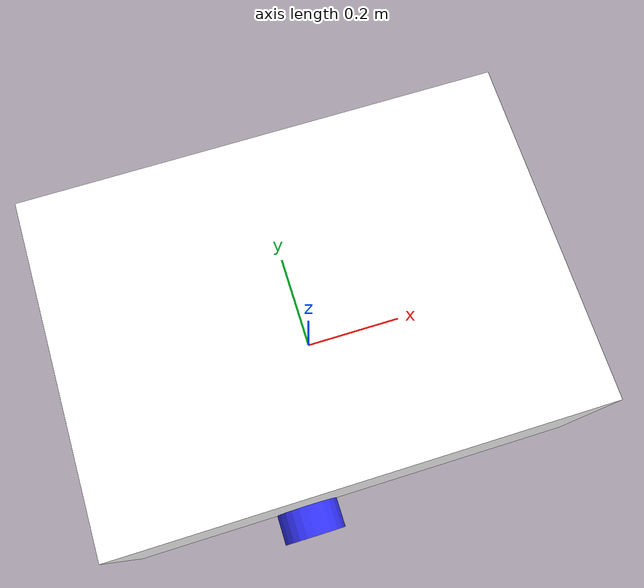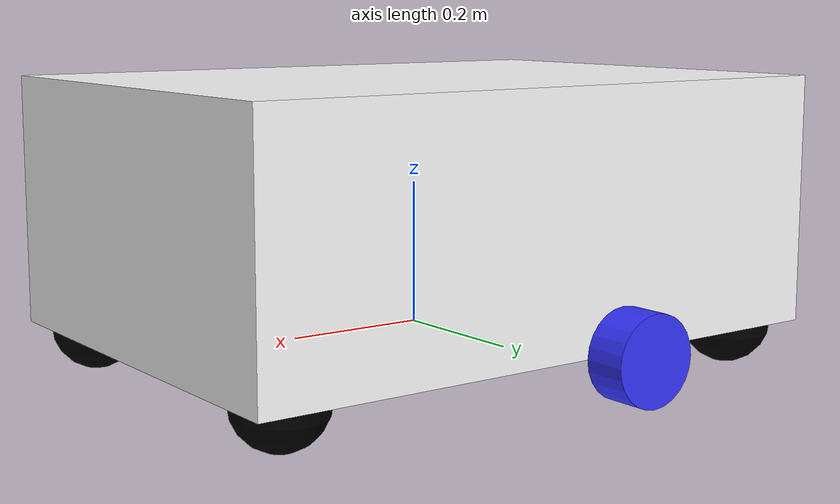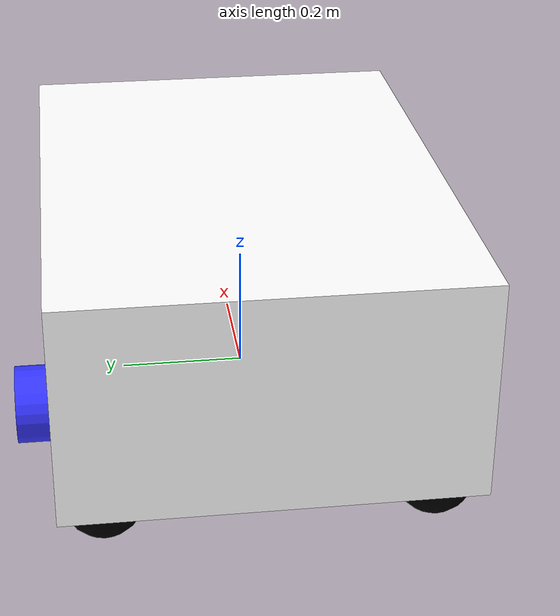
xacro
<?xml version="1.0"?>
<robot xmlns:xacro="http://www.ros.org/wiki/xacro" >

    <xacro:include filename="inertial_macros.xacro"/>

    <material name="white">
        <color rgba="1 1 1 1" />
    </material>

    <material name="orange">
        <color rgba="1 0.3 0.1 1"/>
    </material>

    <material name="blue">
        <color rgba="0.2 0.2 1 1"/>
    </material>

    <material name="black">
        <color rgba="0 0 0 1"/>
    </material>
    <material name="red">
        <color rgba="1 0 0 1"/>
    </material>

    <!-- BASE LINK -->

    <link name="base_link">

    </link>
    <!-- BASE_FOOTPRINT LINK -->

    <joint name="base_footprint_joint" type="fixed">
        <parent link="base_link"/>
        <child link="base_footprint"/>
        <origin xyz="0 0 0" rpy="0 0 0"/>
    </joint>

    <link name="base_footprint">
    </link>

    <!-- CHASSIS LINK -->
 <joint name="chassis_joint" type="fixed">
        <parent link="base_link"/>
        <child link="chassis"/>
        <origin xyz="-0.445 0 0"/>
    </joint>

    <link name="chassis">
        <visual>
            <origin xyz="0.445 0 0.175"/>
            <geometry>
                <box size="0.89 0.64 0.35"/>
            </geometry>
            <material name="white"/>
        </visual>
        <collision>
            <origin xyz="0.445 0 0.175"/>
            <geometry>
                <box size="0.89 0.64 0.35"/>
            </geometry>
        </collision>
        <xacro:inertial_box mass="8" x="0.89" y="0.64" z="0.35">
            <origin xyz="0.445 0 0.175" rpy="0 0 0"/>
        </xacro:inertial_box>

    </link>
    <gazebo reference="chassis">
    <material>Gazebo/White</material>
</gazebo>

<!-- LEFT WHEEL -->

<joint name="left_wheel_joint" type="continuous">
    <parent link="base_link"/>
    <child link="left_wheel"/>
    <origin xyz="-0.103 0.35 0" rpy="-${pi/2} 0 0"/>
    <axis xyz="0 0 1"/>
</joint>

<link name="left_wheel">
    <visual>
        <geometry>
            <cylinder length="0.06" radius="0.0626" />
        </geometry>
        <material name="blue"/>
    </visual>
    <collision>
        <geometry>
            <cylinder length="0.06" radius="0.0626" />
        </geometry>
    </collision>
    <xacro:inertial_cylinder mass="0.1" length="0.06" radius="0.0626">
            <origin xyz="0 0 0" rpy="0 0 0"/>
        </xacro:inertial_cylinder>
</link>
<gazebo reference="left_wheel">
    <material>Gazebo/Blue</material>
</gazebo>

<!-- RIGHT WHEEL LINK -->

<joint name="right_wheel_joint" type="continuous">
    <parent link="base_link"/>
    <child link="right_wheel"/>
    <origin xyz="-0.103 -0.35 0" rpy="${pi/2} 0 0"/>
    <axis xyz="0 0 -1"/>
</joint>

<link name="right_wheel">
    <visual>
        <geometry>
            <cylinder length="0.06" radius="0.0626" />
        </geometry>
        <material name="blue"/>
    </visual>
    <collision>
        <geometry>
            <cylinder length="0.06" radius="0.0626" />
        </geometry>
    </collision>
    <xacro:inertial_cylinder mass="0.1" length="0.06" radius="0.0626">
            <origin xyz="0 0 0" rpy="0 0 0"/>
        </xacro:inertial_cylinder>

</link>
<gazebo reference="right_wheel">
    <material>Gazebo/Blue</material>
</gazebo>

<!-- FRONT CASTER WHEEL LINK -->

    <joint name="front_caster_wheel_joint" type="fixed">
        <parent link="chassis"/>
        <child link="front_caster_wheel"/>
        <origin xyz="0.82 -0.25 0"/>

    </joint>

    <link name="front_caster_wheel">
        <visual>
            <geometry>
                <sphere radius="0.0625"/>
            </geometry>
            <material name="black"/>
        </visual>
        <collision>
            <geometry>
                <sphere radius="0.0625"/>
            </geometry>
            <material name="black"/>
        </collision>
        <xacro:inertial_sphere mass="0.1" radius="0.0625">
            <origin xyz="0 0 0" rpy="0 0 0"/>
        </xacro:inertial_sphere>
    </link>
    <gazebo reference="front_caster_wheel">
    <material>Gazebo/Black</material>
</gazebo>

<!-- FRONT CASTER LEFT WHEEL LINK-->
    <joint name="front_caster_left_wheel_joint" type="fixed">
        <parent link="chassis"/>
        <child link="front_caster_left_wheel"/>
        <origin xyz="0.82 0.25 0"/>

    </joint>

    <link name="front_caster_left_wheel">
        <visual>
            <geometry>
                <sphere radius="0.0625"/>
            </geometry>
            <material name="black"/>
        </visual>
        <collision>
            <geometry>
                <sphere radius="0.0625"/>
            </geometry>
            <material name="black"/>
        </collision>
        <xacro:inertial_sphere mass="0.1" radius="0.0625">
            <origin xyz="0 0 0" rpy="0 0 0"/>
        </xacro:inertial_sphere>
    </link>
    <gazebo reference="front_caster_left_wheel">
    <material>Gazebo/Black</material>
</gazebo>

    <!-- BACK CASTER LEFT WHEEL LINK -->

        <joint name="back_caster_left_wheel_joint" type="fixed">
        <parent link="chassis"/>
        <child link="back_caster_left_wheel"/>
        <origin xyz="0.07 -0.25 0"/>

    </joint>

    <link name="back_caster_left_wheel">
        <visual>
            <geometry>
                <sphere radius="0.0625"/>
            </geometry>
            <material name="black"/>
        </visual>
        <collision>
            <geometry>
                <sphere radius="0.0625"/>
            </geometry>
            <material name="black"/>
        </collision>
        <xacro:inertial_sphere mass="0.1" radius="0.0625">
            <origin xyz="0 0 0" rpy="0 0 0"/>
        </xacro:inertial_sphere>
    </link>
    <gazebo reference="back_caster_left_wheel">
    <material>Gazebo/Black</material>
    <mu1 value="0.001"/>
    <mu2 value="0.001"/>

</gazebo>

    <!-- BACK CASTER RIGHT WHEEL LINK -->

        <joint name="back_caster_right_wheel_joint" type="fixed">
        <parent link="chassis"/>
        <child link="back_caster_right_wheel"/>
        <origin xyz="0.07 0.25 0"/>

    </joint>

    <link name="back_caster_right_wheel">
        <visual>
            <geometry>
                <sphere radius="0.0625"/>
            </geometry>
            <material name="black"/>
        </visual>
        <collision>
            <geometry>
                <sphere radius="0.0625"/>
            </geometry>
            <material name="black"/>
        </collision>
        <xacro:inertial_sphere mass="0.1" radius="0.0625">
            <origin xyz="0 0 0" rpy="0 0 0"/>
        </xacro:inertial_sphere>
    </link>
    <gazebo reference="back_caster_right_wheel">
    <material>Gazebo/Black</material>

</gazebo>

</robot>
